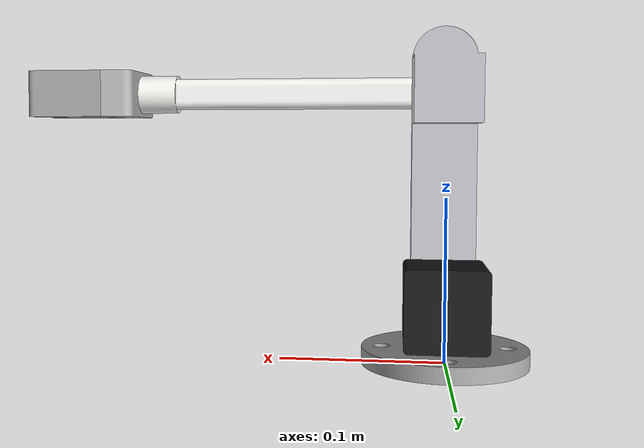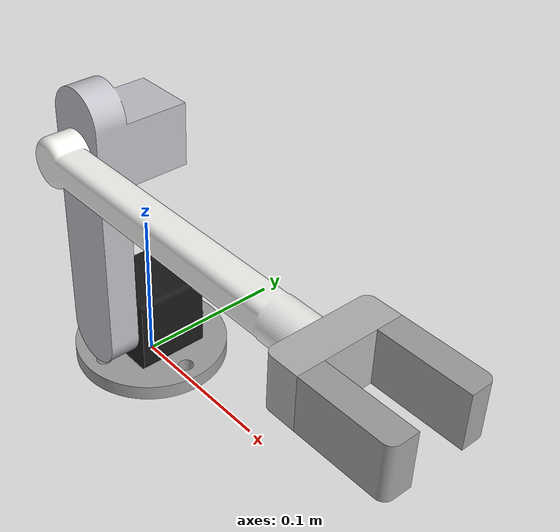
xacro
<?xml version="1.0" ?>
<robot name="mani" xmlns:xacro="http://www.ros.org/wiki/xacro">

<xacro:include filename="$(find mani_description)/urdf/materials.xacro" />
<xacro:include filename="$(find mani_description)/urdf/mani.trans" />
<xacro:include filename="$(find mani_description)/urdf/mani.gazebo" />
<link name="base_link">
  <inertial>
    <origin rpy="0 0 0" xyz="-2.178043845866221e-14 -7.53909257828391e-18 0.005"/>
    <mass value="0.5918760559363156"/>
    <inertia ixx="0.000373" ixy="-0.0" ixz="-0.0" iyy="0.000373" iyz="-0.0" izz="0.000736"/>
  </inertial>
  <visual>
    <origin rpy="0 0 0" xyz="0 0 0"/>
    <geometry>
      <mesh filename="package://mani_description/meshes/base_link.stl" scale="0.001 0.001 0.001"/>
    </geometry>
    <material name="steel_satin"/>
  </visual>
  <collision>
    <origin rpy="0 0 0" xyz="0 0 0"/>
    <geometry>
      <mesh filename="package://mani_description/meshes/base_link.stl" scale="0.001 0.001 0.001"/>
    </geometry>
  </collision>
</link>

<link name="shoulder_v4_1">
  <inertial>
    <origin rpy="0 0 0" xyz="3.8857805861880475e-18 4.440892098500626e-18 0.024999999999999994"/>
    <mass value="0.16714910219066362"/>
    <inertia ixx="6.5e-05" ixy="-0.0" ixz="0.0" iyy="6.9e-05" iyz="0.0" izz="6.5e-05"/>
  </inertial>
  <visual>
    <origin rpy="0 0 0" xyz="-0.0 -0.0 -0.01"/>
    <geometry>
      <mesh filename="package://mani_description/meshes/shoulder_v4_1.stl" scale="0.001 0.001 0.001"/>
    </geometry>
    <material name="plastic_glossy_black"/>
  </visual>
  <collision>
    <origin rpy="0 0 0" xyz="-0.0 -0.0 -0.01"/>
    <geometry>
      <mesh filename="package://mani_description/meshes/shoulder_v4_1.stl" scale="0.001 0.001 0.001"/>
    </geometry>
  </collision>
</link>

<link name="elbow_v5_1">
  <inertial>
    <origin rpy="0 0 0" xyz="-0.0037500000000000333 -0.022099910736455917 0.13426308521845787"/>
    <mass value="0.23938052879452132"/>
    <inertia ixx="0.00066" ixy="0.0" ixz="0.0" iyy="0.000623" iyz="-9.3e-05" izz="9.9e-05"/>
  </inertial>
  <visual>
    <origin rpy="0 0 0" xyz="-0.00375 -0.0 0.003309"/>
    <geometry>
      <mesh filename="package://mani_description/meshes/elbow_v5_1.stl" scale="0.001 0.001 0.001"/>
    </geometry>
    <material name="polystyrene"/>
  </visual>
  <collision>
    <origin rpy="0 0 0" xyz="-0.00375 -0.0 0.003309"/>
    <geometry>
      <mesh filename="package://mani_description/meshes/elbow_v5_1.stl" scale="0.001 0.001 0.001"/>
    </geometry>
  </collision>
</link>

<link name="fist_v5_1">
  <inertial>
    <origin rpy="0 0 0" xyz="0.13000800108359234 -0.009976977034206885 -1.3757847916462396e-09"/>
    <mass value="0.20096935499800006"/>
    <inertia ixx="1.4e-05" ixy="1e-06" ixz="-0.0" iyy="0.00095" iyz="-0.0" izz="0.000949"/>
  </inertial>
  <visual>
    <origin rpy="0 0 0" xyz="0.0 0.043529 -0.165"/>
    <geometry>
      <mesh filename="package://mani_description/meshes/fist_v5_1.stl" scale="0.001 0.001 0.001"/>
    </geometry>
    <material name="plastic_glossy_white"/>
  </visual>
  <collision>
    <origin rpy="0 0 0" xyz="0.0 0.043529 -0.165"/>
    <geometry>
      <mesh filename="package://mani_description/meshes/fist_v5_1.stl" scale="0.001 0.001 0.001"/>
    </geometry>
  </collision>
</link>

<link name="eef_v4_1">
  <inertial>
    <origin rpy="0 0 0" xyz="0.010080147597414157 -0.06352941176470586 0.1649999999999993"/>
    <mass value="0.03189621893711599"/>
    <inertia ixx="1.2e-05" ixy="0.0" ixz="0.0" iyy="3e-06" iyz="0.0" izz="1e-05"/>
  </inertial>
  <visual>
    <origin rpy="0 0 0" xyz="-0.2 -0.01 -0.0"/>
    <geometry>
      <mesh filename="package://mani_description/meshes/eef_v4_1.stl" scale="0.001 0.001 0.001"/>
    </geometry>
    <material name="surface_matte"/>
  </visual>
  <collision>
    <origin rpy="0 0 0" xyz="-0.2 -0.01 -0.0"/>
    <geometry>
      <mesh filename="package://mani_description/meshes/eef_v4_1.stl" scale="0.001 0.001 0.001"/>
    </geometry>
  </collision>
</link>

<link name="right_claw_v2_1">
  <inertial>
    <origin rpy="0 0 0" xyz="0.024827923399335428 -4.640201527511545e-05 -7.216449660063518e-16"/>
    <mass value="0.17536153168700244"/>
    <inertia ixx="1.6e-05" ixy="0.0" ixz="0.0" iyy="4.9e-05" iyz="0.0" izz="3.9e-05"/>
  </inertial>
  <visual>
    <origin rpy="0 0 0" xyz="-0.22 0.031029 -0.165"/>
    <geometry>
      <mesh filename="package://mani_description/meshes/right_claw_v2_1.stl" scale="0.001 0.001 0.001"/>
    </geometry>
    <material name="steel_satin"/>
  </visual>
  <collision>
    <origin rpy="0 0 0" xyz="-0.22 0.031029 -0.165"/>
    <geometry>
      <mesh filename="package://mani_description/meshes/right_claw_v2_1.stl" scale="0.001 0.001 0.001"/>
    </geometry>
  </collision>
</link>

<link name="left_claw_v2_1">
  <inertial>
    <origin rpy="0 0 0" xyz="0.0248279233993354 4.5578485863395635e-05 -7.494005416219807e-16"/>
    <mass value="0.17536153168700247"/>
    <inertia ixx="1.6e-05" ixy="-0.0" ixz="0.0" iyy="4.9e-05" iyz="0.0" izz="3.9e-05"/>
  </inertial>
  <visual>
    <origin rpy="0 0 0" xyz="-0.22 0.076029 -0.165"/>
    <geometry>
      <mesh filename="package://mani_description/meshes/left_claw_v2_1.stl" scale="0.001 0.001 0.001"/>
    </geometry>
    <material name="steel_satin"/>
  </visual>
  <collision>
    <origin rpy="0 0 0" xyz="-0.22 0.076029 -0.165"/>
    <geometry>
      <mesh filename="package://mani_description/meshes/left_claw_v2_1.stl" scale="0.001 0.001 0.001"/>
    </geometry>
  </collision>
</link>

<joint name="Rev1" type="continuous">
  <origin rpy="0 0 0" xyz="0.0 0.0 0.01"/>
  <parent link="base_link"/>
  <child link="shoulder_v4_1"/>
  <axis xyz="0.0 0.0 1.0"/>
</joint>

<joint name="Rev2" type="revolute">
  <origin rpy="0 0 0" xyz="0.00375 0.0 -0.013309"/>
  <parent link="shoulder_v4_1"/>
  <child link="elbow_v5_1"/>
  <axis xyz="0.0 -1.0 0.0"/>
  <limit effort="100" lower="-3.141593" upper="0.0" velocity="100"/>
</joint>

<joint name="Rev3" type="continuous">
  <origin rpy="0 0 0" xyz="-0.00375 -0.043529 0.168309"/>
  <parent link="elbow_v5_1"/>
  <child link="fist_v5_1"/>
  <axis xyz="0.0 -1.0 0.0"/>
</joint>

<joint name="Rev4" type="continuous">
  <origin rpy="0 0 0" xyz="0.2 0.053529 -0.165"/>
  <parent link="fist_v5_1"/>
  <child link="eef_v4_1"/>
  <axis xyz="1.0 0.0 0.0"/>
</joint>

<joint name="Slider5" type="prismatic">
  <origin rpy="0 0 0" xyz="0.02 -0.041029 0.165"/>
  <parent link="eef_v4_1"/>
  <child link="right_claw_v2_1"/>
  <axis xyz="0.0 -1.0 0.0"/>
  <limit effort="100" lower="0.0" upper="0.03" velocity="100"/>
</joint>

<joint name="Slider6" type="prismatic">
  <origin rpy="0 0 0" xyz="0.02 -0.086029 0.165"/>
  <parent link="eef_v4_1"/>
  <child link="left_claw_v2_1"/>
  <axis xyz="0.0 -1.0 0.0"/>
  <limit effort="100" lower="-0.03" upper="0.0" velocity="100"/>
</joint>

</robot>

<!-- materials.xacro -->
<robot name="mani" xmlns:xacro="http://www.ros.org/wiki/xacro" >

<material name="silver_default">
  <color rgba="0.700 0.700 0.700 1.000"/>
</material>
<material name="steel_satin">
  <color rgba="0.6274509803921569 0.6274509803921569 0.6274509803921569 1.0"/>
</material>
<material name="plastic_glossy_black">
  <color rgba="0.09803921568627451 0.09803921568627451 0.09803921568627451 1.0"/>
</material>
<material name="plastic_glossy_white">
  <color rgba="0.9647058823529412 0.9647058823529412 0.9529411764705882 1.0"/>
</material>
<material name="surface_matte">
  <color rgba="0.7019607843137254 0.7019607843137254 0.7019607843137254 1.0"/>
</material>

</robot>

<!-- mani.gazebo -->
<robot name="mani" xmlns:xacro="http://www.ros.org/wiki/xacro" >

<xacro:property name="body_color" value="Gazebo/Silver" />

<gazebo>
  <plugin filename="libgazebo_ros_control.so" name="control"/>
</gazebo>
<gazebo reference="base_link">
  <material>${body_color}</material>
  <mu1>0.2</mu1>
  <mu2>0.2</mu2>
  <selfCollide>true</selfCollide>
  <gravity>true</gravity>
</gazebo>

<gazebo reference="shoulder_v4_1">
  <material>${body_color}</material>
  <mu1>0.2</mu1>
  <mu2>0.2</mu2>
  <selfCollide>true</selfCollide>
</gazebo>

<gazebo reference="elbow_v5_1">
  <material>${body_color}</material>
  <mu1>0.2</mu1>
  <mu2>0.2</mu2>
  <selfCollide>true</selfCollide>
</gazebo>

<gazebo reference="fist_v5_1">
  <material>${body_color}</material>
  <mu1>0.2</mu1>
  <mu2>0.2</mu2>
  <selfCollide>true</selfCollide>
</gazebo>

<gazebo reference="eef_v4_1">
  <material>${body_color}</material>
  <mu1>0.2</mu1>
  <mu2>0.2</mu2>
  <selfCollide>true</selfCollide>
</gazebo>

<gazebo reference="right_claw_v2_1">
  <material>${body_color}</material>
  <mu1>0.2</mu1>
  <mu2>0.2</mu2>
  <selfCollide>true</selfCollide>
</gazebo>

<gazebo reference="left_claw_v2_1">
  <material>${body_color}</material>
  <mu1>0.2</mu1>
  <mu2>0.2</mu2>
  <selfCollide>true</selfCollide>
</gazebo>

</robot>
